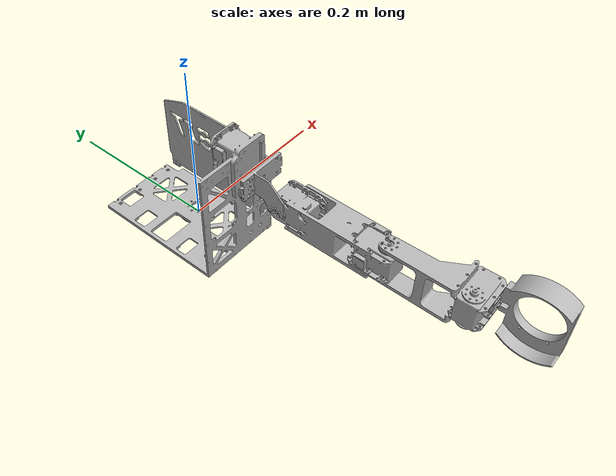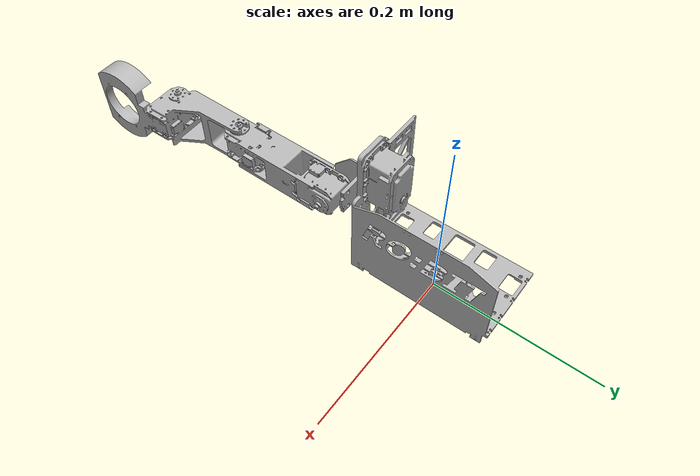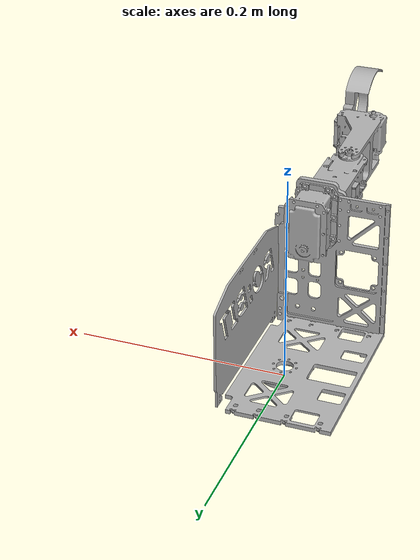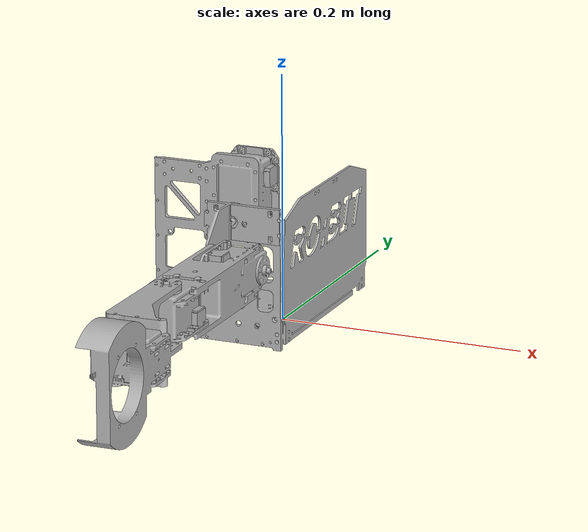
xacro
<?xml version="1.0" ?>
<robot name="loco_mani_MRV" xmlns:xacro="http://www.ros.org/wiki/xacro">

<xacro:include filename="$(find loco_mani_MRV_description)/urdf/materials.xacro" />
<xacro:include filename="$(find loco_mani_MRV_description)/urdf/loco_mani_MRV.trans" />
<xacro:include filename="$(find loco_mani_MRV_description)/urdf/loco_mani_MRV.gazebo" />
<link name="base_link">
  <inertial>
    <origin xyz="-5.061477633745648e-05 -0.0001721355729201868 0.003946875682396339" rpy="0 0 0"/>
    <mass value="0.03383387831439711"/>
    <inertia ixx="7e-06" iyy="7e-06" izz="1.4e-05" ixy="-0.0" iyz="0.0" ixz="0.0"/>
  </inertial>
  <visual>
    <origin xyz="0 0 0" rpy="0 0 0"/>
    <geometry>
      <mesh filename="file://$(find loco_mani_MRV_description)/meshes/base_link.stl" scale="0.001 0.001 0.001"/>
    </geometry>
    <material name="silver"/>
  </visual>
  <collision>
    <origin xyz="0 0 0" rpy="0 0 0"/>
    <geometry>
      <mesh filename="file://$(find loco_mani_MRV_description)/meshes/base_link.stl" scale="0.001 0.001 0.001"/>
    </geometry>
  </collision>
</link>

<link name="main_body_1">
  <inertial>
    <origin xyz="-0.0003613571085252051 -0.043524788325417514 0.07173700468304366" rpy="0 0 0"/>
    <mass value="1.3481459270185805"/>
    <inertia ixx="0.006536" iyy="0.004526" izz="0.004074" ixy="-0.000353" iyz="0.001724" ixz="-0.000148"/>
  </inertial>
  <visual>
    <origin xyz="0.000195 0.000172 -0.006427" rpy="0 0 0"/>
    <geometry>
      <mesh filename="file://$(find loco_mani_MRV_description)/meshes/main_body_1.stl" scale="0.001 0.001 0.001"/>
    </geometry>
    <material name="silver"/>
  </visual>
  <collision>
    <origin xyz="0.000195 0.000172 -0.006427" rpy="0 0 0"/>
    <geometry>
      <mesh filename="file://$(find loco_mani_MRV_description)/meshes/main_body_1.stl" scale="0.001 0.001 0.001"/>
    </geometry>
  </collision>
</link>

<link name="shoulder_1">
  <inertial>
    <origin xyz="0.006809265016533061 -0.007505450460900093 -0.0013478023359121544" rpy="0 0 0"/>
    <mass value="0.06483665189618823"/>
    <inertia ixx="1.3e-05" iyy="2.2e-05" izz="2.4e-05" ixy="-3e-06" iyz="-2e-06" ixz="-1e-06"/>
  </inertial>
  <visual>
    <origin xyz="0.000195 0.091422 -0.106587" rpy="0 0 0"/>
    <geometry>
      <mesh filename="file://$(find loco_mani_MRV_description)/meshes/shoulder_1.stl" scale="0.001 0.001 0.001"/>
    </geometry>
    <material name="silver"/>
  </visual>
  <collision>
    <origin xyz="0.000195 0.091422 -0.106587" rpy="0 0 0"/>
    <geometry>
      <mesh filename="file://$(find loco_mani_MRV_description)/meshes/shoulder_1.stl" scale="0.001 0.001 0.001"/>
    </geometry>
  </collision>
</link>

<link name="upperarm_1">
  <inertial>
    <origin xyz="0.02253691896116575 -0.06273104876121469 0.00013494305171438126" rpy="0 0 0"/>
    <mass value="1.056487832985726"/>
    <inertia ixx="0.00222" iyy="0.00024" izz="0.002222" ixy="-1e-06" iyz="9e-06" ixz="-0.0"/>
  </inertial>
  <visual>
    <origin xyz="0.003698 0.123922 -0.081588" rpy="0 0 0"/>
    <geometry>
      <mesh filename="file://$(find loco_mani_MRV_description)/meshes/upperarm_1.stl" scale="0.001 0.001 0.001"/>
    </geometry>
    <material name="silver"/>
  </visual>
  <collision>
    <origin xyz="0.003698 0.123922 -0.081588" rpy="0 0 0"/>
    <geometry>
      <mesh filename="file://$(find loco_mani_MRV_description)/meshes/upperarm_1.stl" scale="0.001 0.001 0.001"/>
    </geometry>
  </collision>
</link>

<link name="forearm_1">
  <inertial>
    <origin xyz="0.01725436161706603 -0.09475990000797657 -0.02048672328317569" rpy="0 0 0"/>
    <mass value="0.840821168941668"/>
    <inertia ixx="0.001728" iyy="0.000565" izz="0.001608" ixy="0.000396" iyz="1e-06" ixz="1e-06"/>
  </inertial>
  <visual>
    <origin xyz="-0.018854 0.250122 -0.102135" rpy="0 0 0"/>
    <geometry>
      <mesh filename="file://$(find loco_mani_MRV_description)/meshes/forearm_1.stl" scale="0.001 0.001 0.001"/>
    </geometry>
    <material name="silver"/>
  </visual>
  <collision>
    <origin xyz="-0.018854 0.250122 -0.102135" rpy="0 0 0"/>
    <geometry>
      <mesh filename="file://$(find loco_mani_MRV_description)/meshes/forearm_1.stl" scale="0.001 0.001 0.001"/>
    </geometry>
  </collision>
</link>

<joint name="rotate_waist" type="continuous">
  <origin xyz="-0.000195 -0.000172 0.006427" rpy="0 0 0"/>
  <parent link="base_link"/>
  <child link="main_body_1"/>
  <axis xyz="0.0 -0.0 1.0"/>
</joint>

<joint name="rotate_1" type="continuous">
  <origin xyz="0.0 -0.09125 0.10016" rpy="0 0 0"/>
  <parent link="main_body_1"/>
  <child link="shoulder_1"/>
  <axis xyz="-0.0 -1.0 -0.0"/>
</joint>

<joint name="rotate_3" type="continuous">
  <origin xyz="-0.003503 -0.0325 -0.024999" rpy="0 0 0"/>
  <parent link="shoulder_1"/>
  <child link="upperarm_1"/>
  <axis xyz="1.0 -0.0 -0.000117"/>
</joint>

<joint name="rotate_5" type="continuous">
  <origin xyz="0.022552 -0.1262 0.020547" rpy="0 0 0"/>
  <parent link="upperarm_1"/>
  <child link="forearm_1"/>
  <axis xyz="0.000117 -0.0 1.0"/>
</joint>

</robot>

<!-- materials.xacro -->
<robot name="loco_mani_MRV" xmlns:xacro="http://www.ros.org/wiki/xacro" >

<material name="silver">
  <color rgba="0.700 0.700 0.700 1.000"/>
</material>

</robot>

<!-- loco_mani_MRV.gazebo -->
<robot name="loco_mani_MRV" xmlns:xacro="http://www.ros.org/wiki/xacro" >

<xacro:property name="body_color" value="Gazebo/Silver" />

<gazebo>
  <plugin name="control" filename="libgazebo_ros_control.so"/>
</gazebo>
<gazebo reference="base_link">
  <material>${body_color}</material>
  <mu1>0.2</mu1>
  <mu2>0.2</mu2>
  <self_collide>true</self_collide>
  <gravity>true</gravity>
</gazebo>

<gazebo reference="main_body_1">
  <material>${body_color}</material>
  <mu1>0.2</mu1>
  <mu2>0.2</mu2>
  <self_collide>true</self_collide>
</gazebo>

<gazebo reference="shoulder_1">
  <material>${body_color}</material>
  <mu1>0.2</mu1>
  <mu2>0.2</mu2>
  <self_collide>true</self_collide>
</gazebo>

<gazebo reference="upperarm_1">
  <material>${body_color}</material>
  <mu1>0.2</mu1>
  <mu2>0.2</mu2>
  <self_collide>true</self_collide>
</gazebo>

<gazebo reference="forearm_1">
  <material>${body_color}</material>
  <mu1>0.2</mu1>
  <mu2>0.2</mu2>
  <self_collide>true</self_collide>
</gazebo>

</robot>
